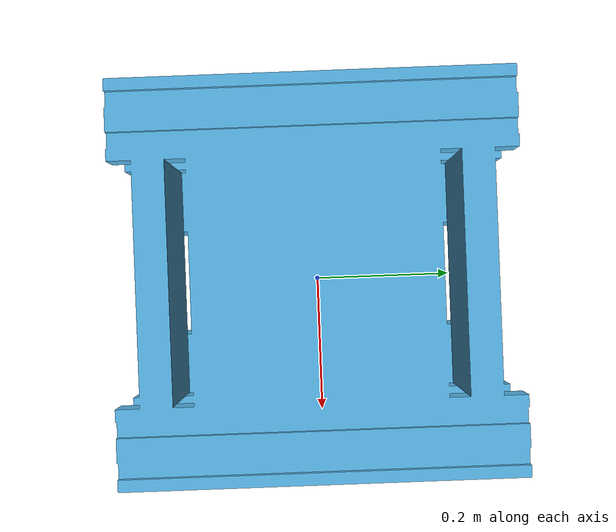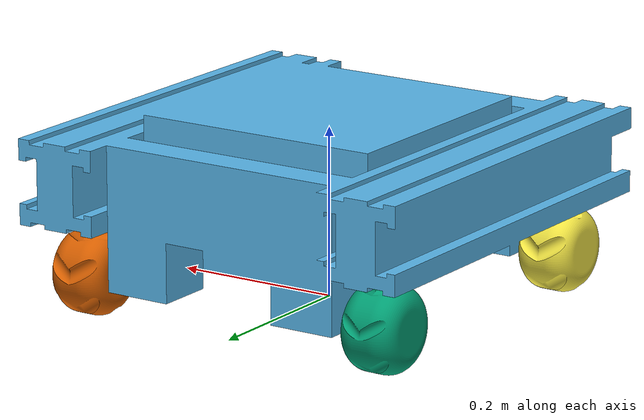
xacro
<?xml version="1.0"?>
<!-- This is the main urdf document, calling other xacro, including -->
<!-- rmitbot_platform:  main platform -->
<!-- rmitbot_gazebo:    gazebo simulation parameters for the main platform -->

<robot name="rmitbot" xmlns:xacro="http://ros.org/wiki/xacro">
    <!-- Include Gazebo Parameters -->
    <xacro:include filename="$(find rmitbot_description)/urdf/rmitbot_platform.xacro" />
    <xacro:include filename="$(find rmitbot_description)/urdf/rmitbot_gazebo.xacro" />
    <xacro:include filename="$(find rmitbot_description)/urdf/rmitbot_ros2_control.xacro" />
</robot>

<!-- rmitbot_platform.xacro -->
<!-- This file contains the urdf of the base platform -->
<!-- Description of the robot in URDF format -->
<!-- Each link must have at least visual for rivz -->
<!-- Each link must have inertia and collision for gazebo -->

<robot name="rmitbot" xmlns:xacro="http://ros.org/wiki/xacro">

    <link name="base_footprint"/>

    <link name="base_link">
        <inertial>
            <origin xyz="0 0 0.14106" rpy="0.0 0.0 0.0" />
            <mass value="204.7"/>
            <inertia
                ixx="3.636e+03" ixy="-1.608e-05" ixz="-3.867e-06"
                iyy="3.806e+03" iyz="-1.250e-06"
                izz="6.563e+03" />
        </inertial>
        <visual>
            <origin xyz="0 0 -0.095" rpy="0 0 0" />
            <geometry>
                <mesh filename="package://rmitbot_description/meshes/base_link.stl" />
            </geometry>
        </visual>
        <collision>
            <origin xyz="0 0 -0.095" rpy="0 0 0" />
            <geometry>
                <mesh filename="package://rmitbot_description/meshes/base_link.stl" />
            </geometry>
        </collision>
    </link>

    <joint name="base_joint" type="fixed">
        <parent link="base_footprint"/>
        <child link="base_link" />
        <origin xyz="0 0 0.095" rpy="0 0 0"/>
    </joint>

    <link name="left_wheel1">
        <inertial>
            <origin xyz="-0.195 0.185 0.05" rpy="0 0 0" />
            <mass value="4.315763" />
            <inertia
                ixx="5.3947033e-03" ixy="6.821e-17" ixz="-1.137e-17"
                iyy="4.4596211e-03" iyz="0.0"
                izz="4.4596218e-03" />
        </inertial>
        <visual>
            <origin xyz="0.16 -0.185 -0.05" rpy="0 0 0" />
            <geometry>
                <mesh filename="package://rmitbot_description/meshes/left_wheel1.stl" />
            </geometry>
        </visual>
        <collision>
            <origin xyz="0.16 -0.185 -0.05" rpy="0 0 0" />
            <geometry>
                <mesh filename="package://rmitbot_description/meshes/left_wheel1.stl" />
            </geometry>
        </collision>
    </link>

    <joint name="left_wheel1_joint" type="continuous">
        <origin xyz="-0.16 0.185 -0.05" rpy="0 0 0" />
        <parent link="base_link" />
        <child link="left_wheel1" />
        <axis xyz="1 0 0" />
    </joint>

    <link name="left_wheel2">
        <inertial>
            <origin xyz="-0.195 -0.185 0.05" rpy="0 0 0" />
            <mass value="4.315763" />
            <inertia
                ixx="0.0053947033" ixy="-2.274e-12" ixz="0.0"
                iyy="0.0044596211" iyz="0.0"
                izz="0.0044596218" />
        </inertial>
        <visual>
            <origin xyz="0.16 0.185 -0.05" rpy="0 0 0" />
            <geometry>
                <mesh filename="package://rmitbot_description/meshes/left_wheel2.stl" />
            </geometry>
        </visual>
        <collision>
            <origin xyz="0.16 0.185 -0.05" rpy="0 0 0" />
            <geometry>
                <mesh filename="package://rmitbot_description/meshes/left_wheel2.stl" />
            </geometry>
        </collision>
    </link>

    <joint name="left_wheel2_joint" type="continuous">
        <origin xyz="-0.16 -0.185 -0.05" rpy="0 0 0" />
        <parent link="base_link" />
        <child link="left_wheel2" />
        <axis xyz="1 0 0" />
    </joint>

    <link name="right_wheel1">
        <inertial>
            <origin xyz="0.195 0.185 0.05" rpy="0 0 0" />
            <mass value="4.315763" />
            <inertia
                ixx="0.0053947033" ixy="2.274e-12" ixz="0.0"
                iyy="0.0044596211" iyz="0.0"
                izz="0.0044596218" />
        </inertial>
        <visual>
            <origin xyz="-0.16 -0.185 -0.05" rpy="0 0 0" />
            <geometry>
                <mesh filename="package://rmitbot_description/meshes/right_wheel1.stl" />
            </geometry>
        </visual>
        <collision>
            <origin xyz="-0.16 -0.185 -0.05" rpy="0 0 0" />
            <geometry>
                <mesh filename="package://rmitbot_description/meshes/right_wheel1.stl" />
            </geometry>
        </collision>
    </link>

    <joint name="right_wheel1_joint" type="continuous">
        <origin xyz="0.16 -0.185 -0.05" rpy="0 0 0" />
        <parent link="base_link" />
        <child link="right_wheel1" />
        <axis xyz="1 0 0" />
    </joint>

    <link name="right_wheel2">
        <inertial>
            <origin xyz="0.195 -0.185 0.05" rpy="0 0 0" />
            <mass value="4.315763" />
            <inertia
                ixx="0.0053947033" ixy="-2.274e-12" ixz="0.0"
                iyy="0.0044596211" iyz="0.0"
                izz="0.0044596218" />
        </inertial>
        <visual>
            <origin xyz="-0.16 0.185 -0.05" rpy="0 0 0" />
            <geometry>
                <mesh filename="package://rmitbot_description/meshes/right_wheel2.stl" />
            </geometry>
        </visual>
        <collision>
            <origin xyz="-0.16 0.185 -0.05" rpy="0 0 0" />
            <geometry>
                <mesh filename="package://rmitbot_description/meshes/right_wheel2.stl" />
            </geometry>
        </collision>
    </link>

    <joint name="right_wheel2_joint" type="continuous">
        <origin xyz="0.16 0.185 -0.05" rpy="0 0 0" />
        <parent link="base_link" />
        <child link="right_wheel2" />
        <axis xyz="1 0 0" />
    </joint>
</robot>
